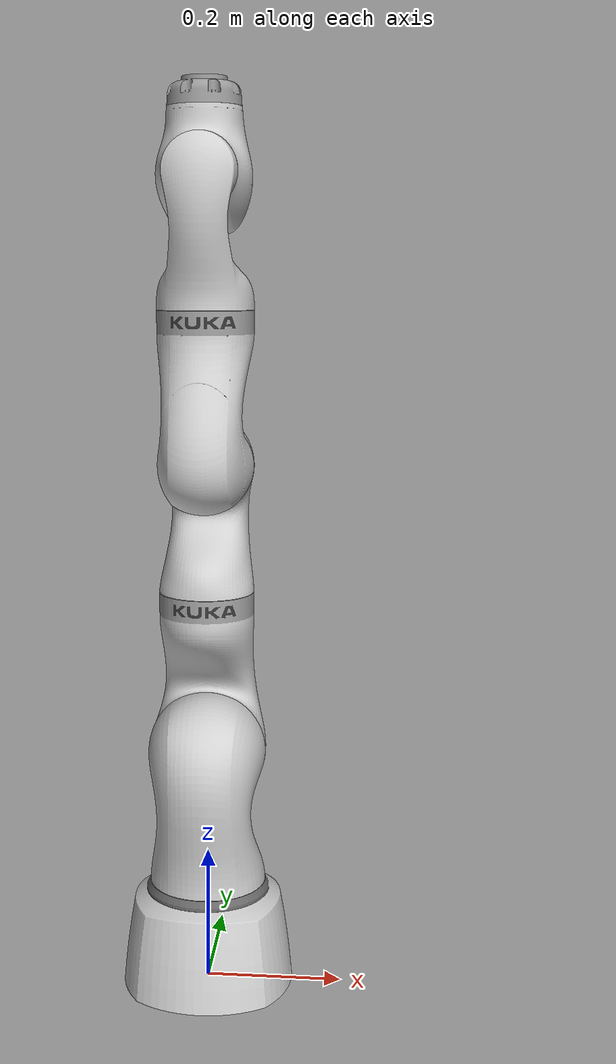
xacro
<?xml version="1.0"?>

<!-- top level -->
<robot name="med14" xmlns:xacro="http://www.ros.org/wiki/xacro">

    <!-- include the med macro and controller -->
    <xacro:include filename="$(find lbr_description)/urdf/med14/med14.urdf.xacro" />
    <xacro:include filename="$(find lbr_description)/gazebo/lbr_gazebo.xacro" />
    <xacro:include filename="$(find lbr_description)/ros2_control/lbr_system_interface.xacro" />

    <!-- arguments -->
    <xacro:arg name="robot_name" default="lbr" />
    <xacro:arg name="mode" default="true" />
    <xacro:arg
        name="joint_limits_path"
        default="$(find lbr_description)/urdf/med14/joint_limits.yaml" />
    <xacro:arg
        name="system_config_path"
        default="$(find lbr_description)/ros2_control/lbr_system_config.yaml" />
    <xacro:arg
        name="initial_joint_positions_path"
        default="$(find lbr_description)/ros2_control/initial_joint_positions.yaml" />

    <!-- KDL requires a link without inertia / Gazebo requires a connection to world link or robot
    will tipple https://github.com/lbr-stack/lbr_fri_ros2_stack/issues/230 -->
    <link name="world" />

    <joint name="$(arg robot_name)_world_joint" type="fixed">
        <parent link="world" />
        <child link="$(arg robot_name)_link_0" />
    </joint>

    <!-- macros for gazebo / mock / hardware -->
    <xacro:lbr_gazebo robot_name="$(arg robot_name)" />
    <xacro:lbr_system_interface
        robot_name="$(arg robot_name)"
        mode="$(arg mode)"
        system_config_path="$(arg system_config_path)"
        initial_joint_positions_path="$(arg initial_joint_positions_path)" />

    <!-- med description -->
    <xacro:med14
        robot_name="$(arg robot_name)"
        joint_limits_path="$(arg joint_limits_path)" />
</robot>

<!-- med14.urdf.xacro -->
<robot xmlns:xacro="http://www.ros.org/wiki/xacro">
    <!-- robot as extracted via https://github.com/syuntoku14/fusion2urdf -->
    <xacro:macro name="med14"
        params="robot_name:=^|lbr joint_limits_path:=^|'$(find lbr_description)/urdf/med14/joint_limits.yaml'">

        <!-- load joint limits via yaml -->
        <xacro:property name="joint_limits" value="${xacro.load_yaml(joint_limits_path)}" />

        <!-- constants -->
        <xacro:property name="PI" value="3.1415926535897931" />
        <xacro:property name="joint_damping" value="10.0" />
        <xacro:property name="joint_friction" value="0.1" />

        <!-- links and joints -->
        <link name="${robot_name}_link_0">
            <inertial>
                <origin rpy="0 0 0" xyz="-0.001864 0.0 0.077517" />
                <mass value="8.146413" />
                <inertia ixx="0.044604" ixy="0.0" ixz="-0.000788" iyy="0.045465" iyz="0.0"
                    izz="0.061904" />
            </inertial>
            <visual>
                <origin rpy="0 0 0" xyz="0 0 0" />
                <geometry>
                    <mesh filename="package://lbr_description/meshes/med14/visual/link_0.dae" />
                </geometry>
            </visual>
            <collision>
                <origin rpy="0 0 0" xyz="0 0 0" />
                <geometry>
                    <mesh filename="package://lbr_description/meshes/med14/collision/link_0.stl" />
                </geometry>
            </collision>
        </link>

        <joint name="${robot_name}_A1" type="revolute">
            <origin rpy="0 0 0" xyz="0.0 0.0 0.147" />
            <parent link="${robot_name}_link_0" />
            <child link="${robot_name}_link_1" />
            <axis xyz="0.0 0.0 1.0" />
            <limit
                effort="${joint_limits['A1']['effort']}"
                lower="${joint_limits['A1']['lower'] * PI / 180}"
                upper="${joint_limits['A1']['upper'] * PI / 180}"
                velocity="${joint_limits['A1']['velocity'] * PI / 180}" />
            <safety_controller
                soft_lower_limit="${joint_limits['A1']['lower'] * PI / 180}"
                soft_upper_limit="${joint_limits['A1']['upper'] * PI / 180}"
                k_position="${joint_limits['A1']['velocity'] / joint_limits['A1']['safety_position_margin']}"
                k_velocity="${joint_limits['A1']['k_velocity']}" />
            <dynamics damping="${joint_damping}" friction="${joint_friction}" />
        </joint>

        <link name="${robot_name}_link_1">
            <inertial>
                <origin rpy="0 0 0" xyz="0.0 -0.033795  0.132404" />
                <mass value="5.591419" />
                <inertia ixx="0.044885" ixy="0.0" ixz="0.0" iyy="0.045283" iyz="0.006703"
                    izz="0.016776" />
            </inertial>
            <visual>
                <origin rpy="0 0 0" xyz="0.0 0.0 -0.147" />
                <geometry>
                    <mesh filename="package://lbr_description/meshes/med14/visual/link_1.dae" />
                </geometry>
            </visual>
            <collision>
                <origin rpy="0 0 0" xyz="0.0 0.0 -0.147" />
                <geometry>
                    <mesh filename="package://lbr_description/meshes/med14/collision/link_1.stl" />
                </geometry>
            </collision>
        </link>

        <joint name="${robot_name}_A2" type="revolute">
            <origin rpy="0 0 0" xyz="0.0 -0.01 0.2125" />
            <parent link="${robot_name}_link_1" />
            <child link="${robot_name}_link_2" />
            <axis xyz="0.0 1.0 0.0" />
            <limit
                effort="${joint_limits['A2']['effort']}"
                lower="${joint_limits['A2']['lower'] * PI / 180}"
                upper="${joint_limits['A2']['upper'] * PI / 180}"
                velocity="${joint_limits['A2']['velocity'] * PI / 180}" />
            <safety_controller
                soft_lower_limit="${joint_limits['A2']['lower'] * PI / 180}"
                soft_upper_limit="${joint_limits['A2']['upper'] * PI / 180}"
                k_position="${joint_limits['A2']['velocity'] / joint_limits['A2']['safety_position_margin']}"
                k_velocity="${joint_limits['A2']['k_velocity']}" />
            <dynamics damping="${joint_damping}" friction="${joint_friction}" />
        </joint>

        <link name="${robot_name}_link_2">
            <inertial>
                <origin rpy="0 0 0" xyz="0.000136 0.047546 0.076324" />
                <mass value="6.013411" />
                <inertia ixx="0.05833" ixy="-3.5e-05" ixz="5.9e-05" iyy="0.057062" iyz="0.010605"
                    izz="0.017466" />
            </inertial>
            <visual>
                <origin rpy="0 0 0" xyz="0.0 0.01 -0.3595" />
                <geometry>
                    <mesh filename="package://lbr_description/meshes/med14/visual/link_2.dae" />
                </geometry>
            </visual>
            <collision>
                <origin rpy="0 0 0" xyz="0.0 0.01 -0.3595" />
                <geometry>
                    <mesh filename="package://lbr_description/meshes/med14/collision/link_2.stl" />
                </geometry>
            </collision>
        </link>

        <joint name="${robot_name}_A3" type="revolute">
            <origin rpy="0 0 0" xyz="0.0 0.01 0.228" />
            <parent link="${robot_name}_link_2" />
            <child link="${robot_name}_link_3" />
            <axis xyz="0.0 0.0 1.0" />
            <limit
                effort="${joint_limits['A3']['effort']}"
                lower="${joint_limits['A3']['lower'] * PI / 180}"
                upper="${joint_limits['A3']['upper'] * PI / 180}"
                velocity="${joint_limits['A3']['velocity'] * PI / 180}" />
            <safety_controller
                soft_lower_limit="${joint_limits['A3']['lower'] * PI / 180}"
                soft_upper_limit="${joint_limits['A3']['upper'] * PI / 180}"
                k_position="${joint_limits['A3']['velocity'] / joint_limits['A3']['safety_position_margin']}"
                k_velocity="${joint_limits['A3']['k_velocity']}" />
            <dynamics damping="${joint_damping}" friction="${joint_friction}" />
        </joint>

        <link name="${robot_name}_link_3">
            <inertial>
                <origin rpy="0 0 0" xyz="0.0 0.034913 0.123108" />
                <mass value="3.65879" />
                <inertia ixx="0.02296" ixy="0.0" ixz="0.0" iyy="0.021913" iyz="-0.004065"
                    izz="0.00814" />
            </inertial>
            <visual>
                <origin rpy="0 0 0" xyz="0.0 0.0 -0.5875" />
                <geometry>
                    <mesh filename="package://lbr_description/meshes/med14/visual/link_3.dae" />
                </geometry>
            </visual>
            <collision>
                <origin rpy="0 0 0" xyz="0.0 0.0 -0.5875" />
                <geometry>
                    <mesh filename="package://lbr_description/meshes/med14/collision/link_3.stl" />
                </geometry>
            </collision>
        </link>

        <joint name="${robot_name}_A4" type="revolute">
            <origin rpy="0 0 0" xyz="0.0 0.0105 0.192" />
            <parent link="${robot_name}_link_3" />
            <child link="${robot_name}_link_4" />
            <axis xyz="0.0 -1.0 0.0" />
            <limit
                effort="${joint_limits['A4']['effort']}"
                lower="${joint_limits['A4']['lower'] * PI / 180}"
                upper="${joint_limits['A4']['upper'] * PI / 180}"
                velocity="${joint_limits['A4']['velocity'] * PI / 180}" />
            <safety_controller
                soft_lower_limit="${joint_limits['A4']['lower'] * PI / 180}"
                soft_upper_limit="${joint_limits['A4']['upper'] * PI / 180}"
                k_position="${joint_limits['A4']['velocity'] / joint_limits['A4']['safety_position_margin']}"
                k_velocity="${joint_limits['A4']['k_velocity']}" />
            <dynamics damping="${joint_damping}" friction="${joint_friction}" />
        </joint>

        <link name="${robot_name}_link_4">
            <inertial>
                <origin rpy="0 0 0" xyz="0.0 -0.039793  0.086944" />
                <mass value="4.358267" />
                <inertia ixx="0.034255" ixy="0.0" ixz="0.0" iyy="0.032512" iyz="-0.006365"
                    izz="0.010444" />
            </inertial>
            <visual>
                <origin rpy="0 0 0" xyz="0.0 -0.0105 -0.7795" />
                <geometry>
                    <mesh filename="package://lbr_description/meshes/med14/visual/link_4.dae" />
                </geometry>
            </visual>
            <collision>
                <origin rpy="0 0 0" xyz="0.0 -0.0105 -0.7795" />
                <geometry>
                    <mesh filename="package://lbr_description/meshes/med14/collision/link_4.stl" />
                </geometry>
            </collision>
        </link>

        <joint name="${robot_name}_A5" type="revolute">
            <origin rpy="0 0 0" xyz="0.0 -0.0105 0.2075" />
            <parent link="${robot_name}_link_4" />
            <child link="${robot_name}_link_5" />
            <axis xyz="0.0 0.0 1.0" />
            <limit
                effort="${joint_limits['A5']['effort']}"
                lower="${joint_limits['A5']['lower'] * PI / 180}"
                upper="${joint_limits['A5']['upper'] * PI / 180}"
                velocity="${joint_limits['A5']['velocity'] * PI / 180}" />
            <safety_controller
                soft_lower_limit="${joint_limits['A5']['lower'] * PI / 180}"
                soft_upper_limit="${joint_limits['A5']['upper'] * PI / 180}"
                k_position="${joint_limits['A5']['velocity'] / joint_limits['A5']['safety_position_margin']}"
                k_velocity="${joint_limits['A5']['k_velocity']}" />
            <dynamics damping="${joint_damping}" friction="${joint_friction}" />
        </joint>

        <link name="${robot_name}_link_5">
            <inertial>
                <origin rpy="0 0 0" xyz="0.0 -0.029824  0.076267" />
                <mass value="1.653015" />
                <inertia ixx="0.009172" ixy="0.0" ixz="0.0"
                    iyy="0.007714" iyz="0.003033" izz="0.004159" />
            </inertial>
            <visual>
                <origin rpy="0 0 0" xyz="0.0 0.0 -0.987" />
                <geometry>
                    <mesh filename="package://lbr_description/meshes/med14/visual/link_5.dae" />
                </geometry>
            </visual>
            <collision>
                <origin rpy="0 0 0" xyz="0.0 0.0 -0.987" />
                <geometry>
                    <mesh filename="package://lbr_description/meshes/med14/collision/link_5.stl" />
                </geometry>
            </collision>
        </link>

        <joint name="${robot_name}_A6" type="revolute">
            <origin rpy="0 0 0" xyz="0.0 -0.0707 0.1925" />
            <parent link="${robot_name}_link_5" />
            <child link="${robot_name}_link_6" />
            <axis xyz="0.0 1.0 0.0" />
            <limit
                effort="${joint_limits['A6']['effort']}"
                lower="${joint_limits['A6']['lower'] * PI / 180}"
                upper="${joint_limits['A6']['upper'] * PI / 180}"
                velocity="${joint_limits['A6']['velocity'] * PI / 180}" />
            <safety_controller
                soft_lower_limit="${joint_limits['A6']['lower'] * PI / 180}"
                soft_upper_limit="${joint_limits['A6']['upper'] * PI / 180}"
                k_position="${joint_limits['A6']['velocity'] / joint_limits['A6']['safety_position_margin']}"
                k_velocity="${joint_limits['A6']['k_velocity']}" />
            <dynamics damping="${joint_damping}" friction="${joint_friction}" />
        </joint>

        <link name="${robot_name}_link_6">
            <inertial>
                <origin rpy="0 0 0" xyz="-1.000e-06 7.102e-02 4.953e-03" />
                <mass value="2.598211" />
                <inertia ixx="0.00764" ixy="0.0" ixz="0.0" iyy="0.007355" iyz="0.000336"
                    izz="0.005004" />
            </inertial>
            <visual>
                <origin rpy="0 0 0" xyz="0.0 0.0707 -1.1795" />
                <geometry>
                    <mesh filename="package://lbr_description/meshes/med14/visual/link_6.dae" />
                </geometry>
            </visual>
            <collision>
                <origin rpy="0 0 0" xyz="0.0 0.0707 -1.1795" />
                <geometry>
                    <mesh filename="package://lbr_description/meshes/med14/collision/link_6.stl" />
                </geometry>
            </collision>
        </link>

        <joint name="${robot_name}_A7" type="revolute">
            <origin rpy="0 0 0" xyz="0.0 0.0707 0.091" />
            <parent link="${robot_name}_link_6" />
            <child link="${robot_name}_link_7" />
            <axis xyz="0.0 0.0 1.0" />
            <limit
                effort="${joint_limits['A7']['effort']}"
                lower="${joint_limits['A7']['lower'] * PI / 180}"
                upper="${joint_limits['A7']['upper'] * PI / 180}"
                velocity="${joint_limits['A7']['velocity'] * PI / 180}" />
            <safety_controller
                soft_lower_limit="${joint_limits['A7']['lower'] * PI / 180}"
                soft_upper_limit="${joint_limits['A7']['upper'] * PI / 180}"
                k_position="${joint_limits['A7']['velocity'] / joint_limits['A7']['safety_position_margin']}"
                k_velocity="${joint_limits['A7']['k_velocity']}" />
            <dynamics damping="${joint_damping}" friction="${joint_friction}" />
        </joint>

        <link name="${robot_name}_link_7">
            <inertial>
                <origin rpy="0 0 0" xyz="3.0000e-06 -2.0000e-06 1.3782e-02" />
                <mass value="0.280474" />
                <inertia ixx="0.000185" ixy="0.0" ixz="0.0" iyy="0.000185" iyz="0.0" izz="0.000323" />
            </inertial>
            <visual>
                <origin rpy="0 0 0" xyz="0.0 0.0 -1.2705" />
                <geometry>
                    <mesh filename="package://lbr_description/meshes/med14/visual/link_7.dae" />
                </geometry>
            </visual>
            <collision>
                <origin rpy="0 0 0" xyz="0.0 0.0 -1.2705" />
                <geometry>
                    <mesh filename="package://lbr_description/meshes/med14/collision/link_7.stl" />
                </geometry>
            </collision>
        </link>

        <joint name="${robot_name}_joint_ee" type="fixed">
            <parent link="${robot_name}_link_7" />
            <child link="${robot_name}_link_ee" />
            <origin xyz="0 0 0.035" rpy="0 0 0" />
        </joint>

        <link name="${robot_name}_link_ee">
        </link>
    </xacro:macro>
</robot>
